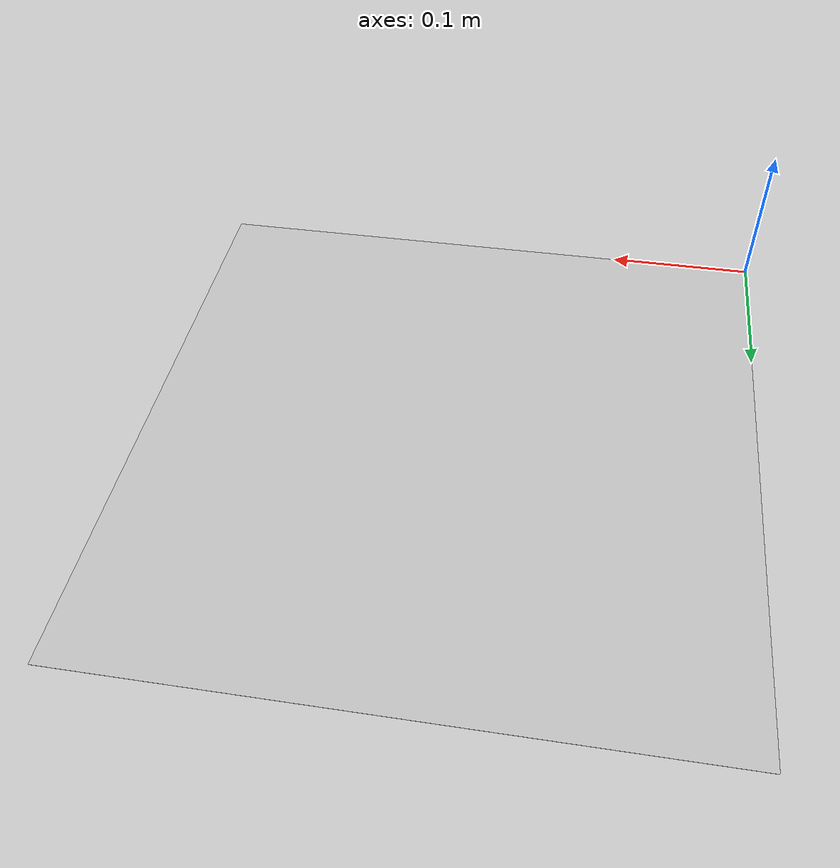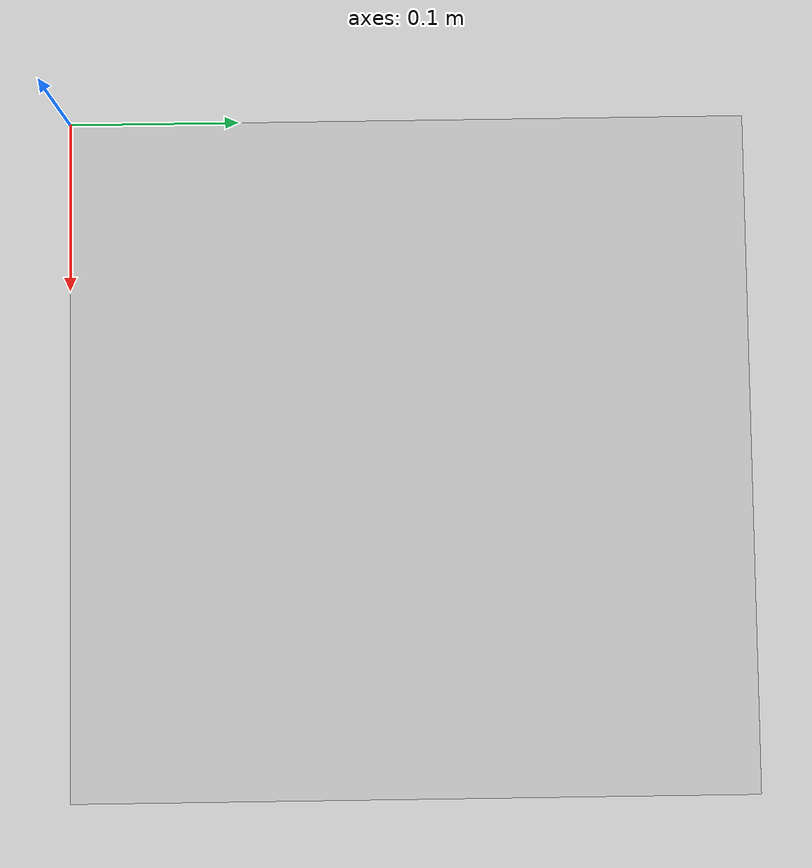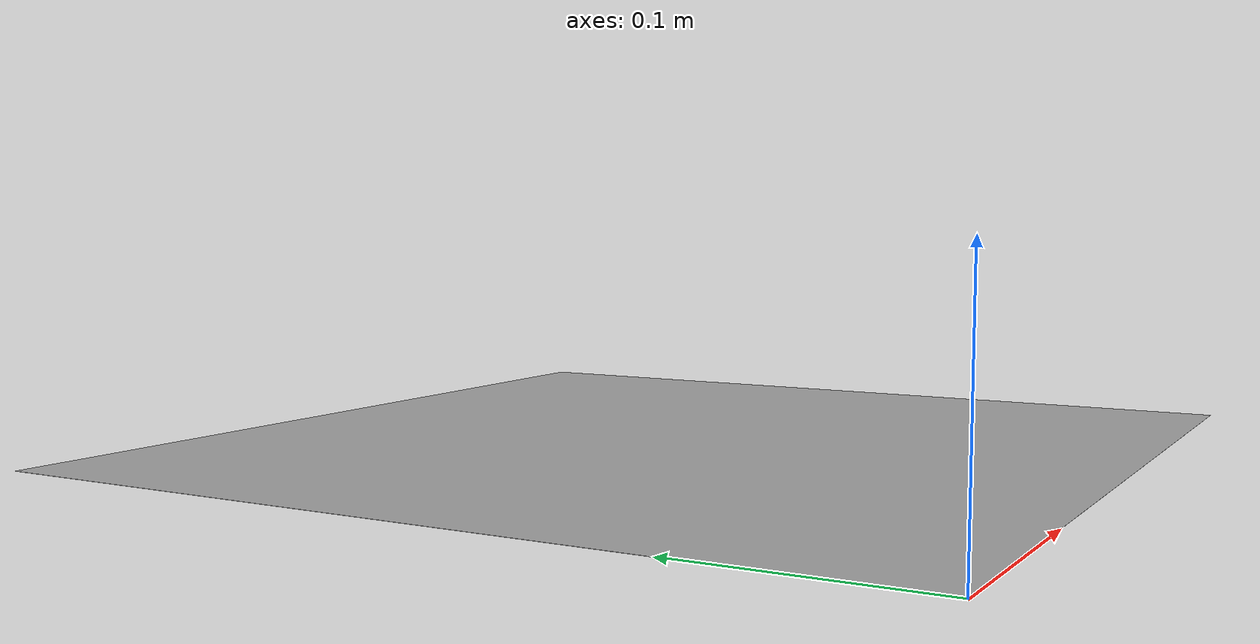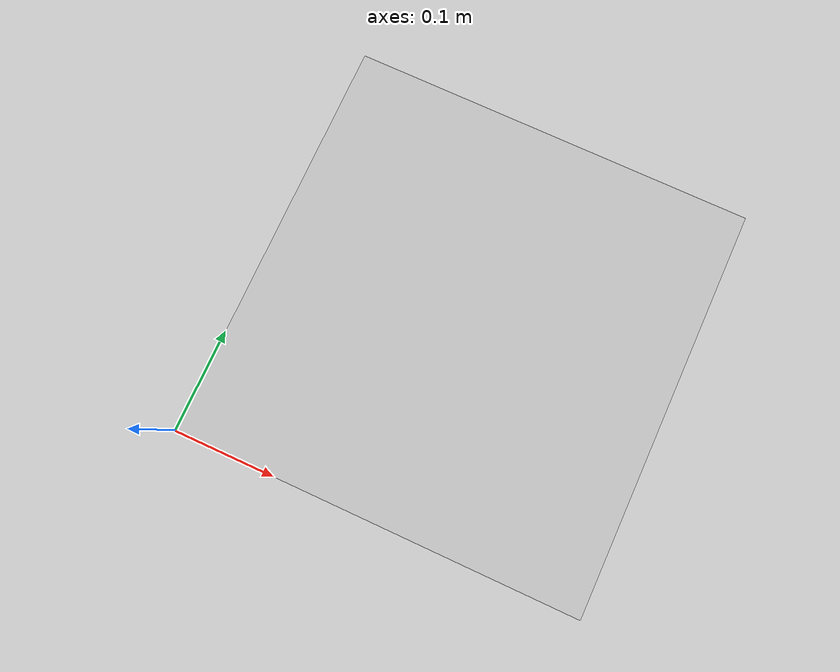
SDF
<?xml version="1.0" ?>
<sdf version="1.7">
    <model name="aruco_tag_0">
        <static>true</static>
        <pose>0 0 0 0 0 0</pose>
        <link name="link">
            <visual name="visual">
                <geometry>
                    <mesh>
                        <uri>model://aruco_tag_0/meshes/aruco_tag_0.obj</uri>
                        <scale>0.4 0.4 0.1</scale>
                    </mesh>
                </geometry>
            </visual>
        </link>
    </model>
</sdf>
